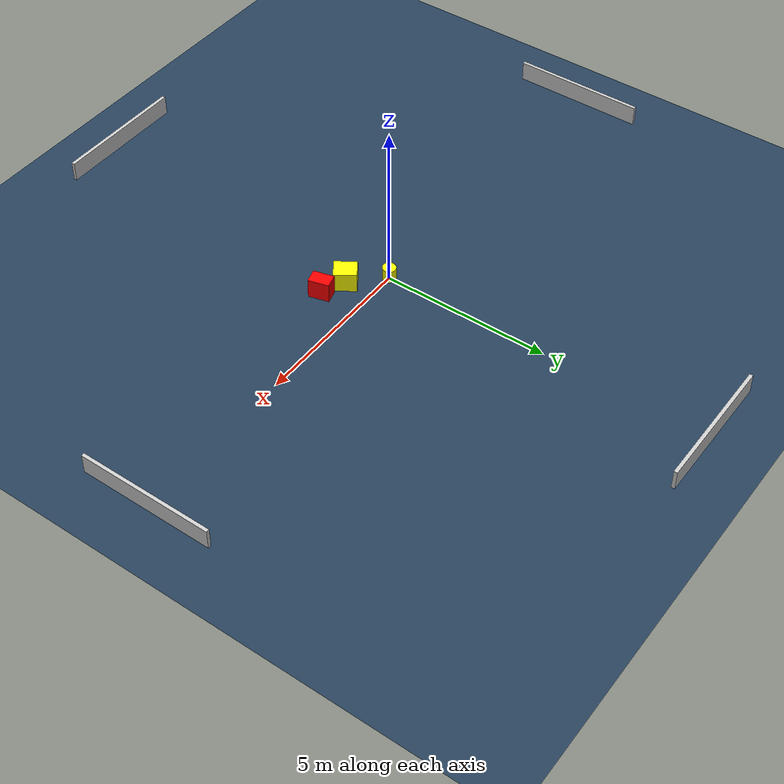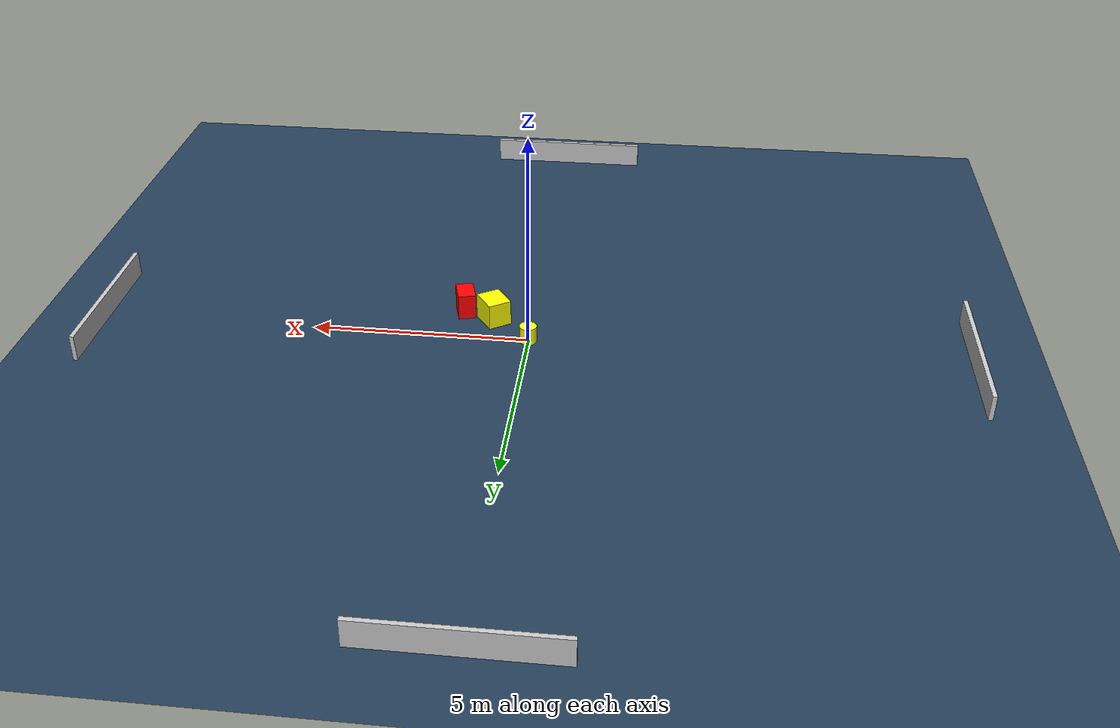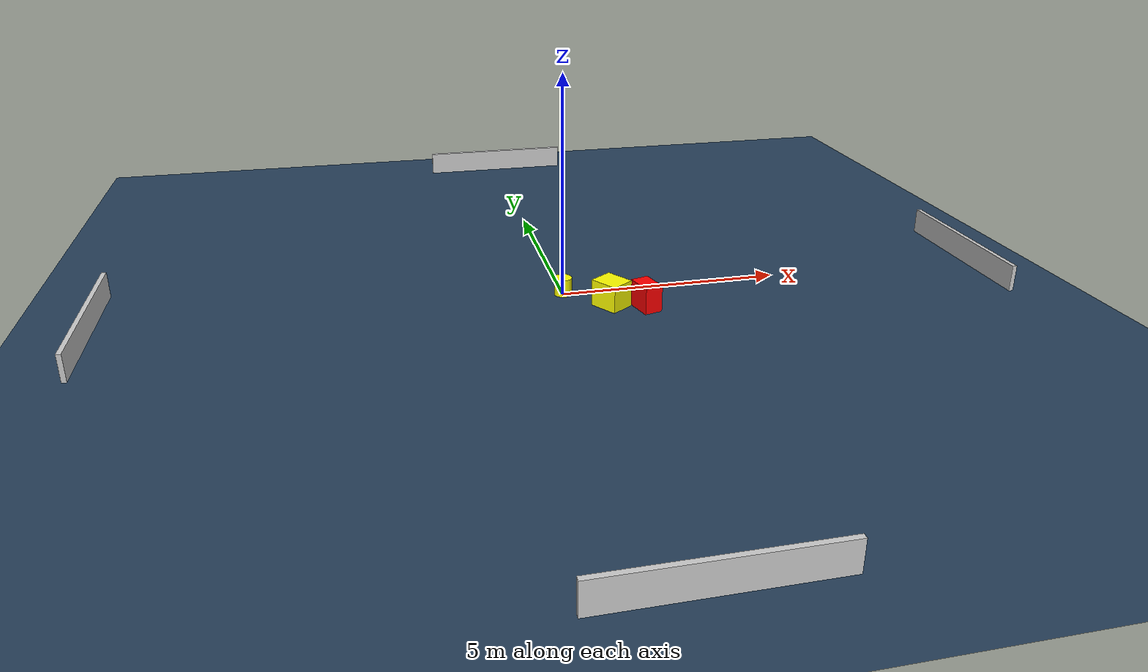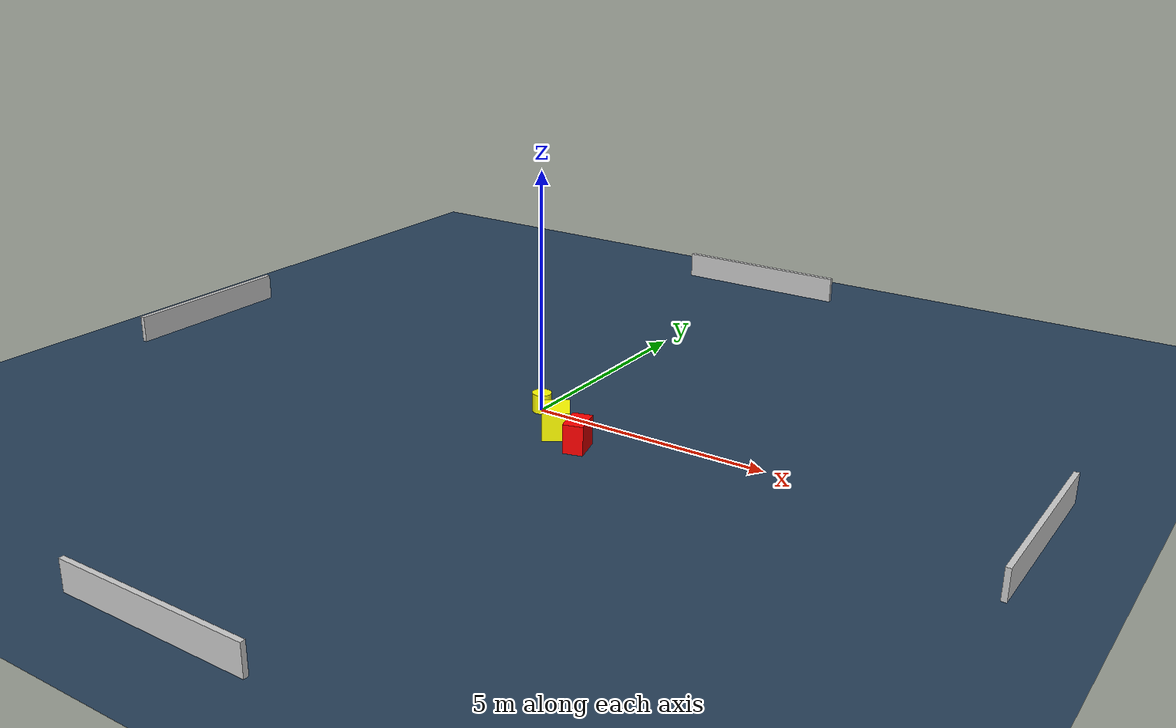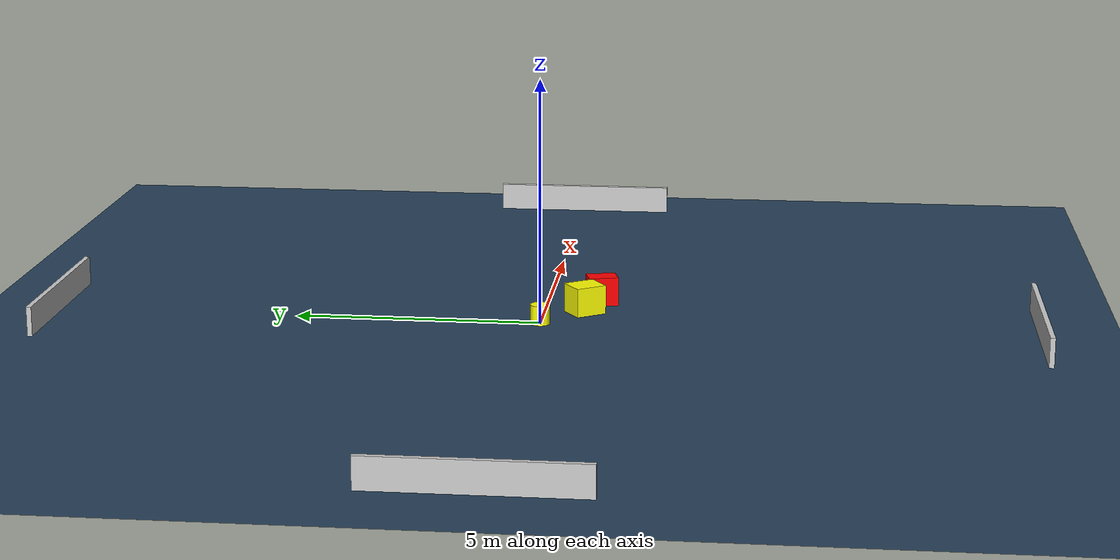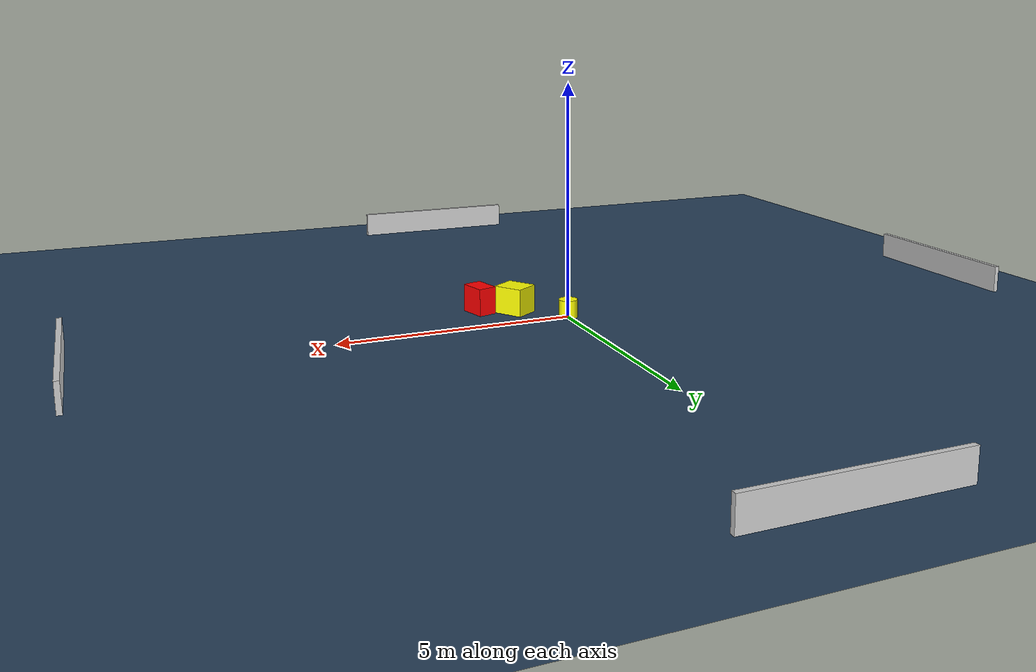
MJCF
<?xml version="1.0" ?>
<mujoco model="generated_environment">
  <option timestep="0.01" integrator="RK4" cone="elliptic"/>
  <default>
    <geom density="1"/>
  </default>
  <asset>
    <texture builtin="gradient" height="3072" name="skybox" rgb1="0.3 0.5 0.7" rgb2="0 0 0" type="skybox" width="512"/>
    <texture builtin="checker" height="300" name="groundplane" rgb1="0.2 0.3 0.4" rgb2="0.1 0.2 0.3" type="2d" width="300"/>
    <material name="groundplane" reflectance="0.2" texrepeat="5 5" texture="groundplane"/>
  </asset>
  <worldbody>
    <light dir="0 0 -1" directional="true" pos="0 0 1.5"/>
    <geom condim="3" friction="0.5 0.005 0.001" material="groundplane" name="floor" pos="0 0 0" size="0 0 0.05" type="plane"/>
    <body name="walls">
      <geom name="wall_1" condim="4" pos="-10.0 0.0 0.3" rgba="0.800000011920929 0.800000011920929 0.800000011920929 1.0" size="0.05 2.0 0.3" type="box"/>
      <geom name="wall_2" condim="4" pos="10.0 0.0 0.3" rgba="0.800000011920929 0.800000011920929 0.800000011920929 1.0" size="0.05 2.0 0.3" type="box"/>
      <geom name="wall_3" condim="4" pos="0.0 -10.0 0.3" rgba="0.800000011920929 0.800000011920929 0.800000011920929 1.0" size="2.0 0.05 0.3" type="box"/>
      <geom name="wall_4" condim="4" pos="0.0 10.0 0.3" rgba="0.800000011920929 0.800000011920929 0.800000011920929 1.0" size="2.0 0.05 0.3" type="box"/>
    </body>
    <body name="robot">
      <joint name="joint_x" type="slide" pos="0 0 0" axis="1 0 0"/>
      <joint name="joint_y" type="slide" pos="0 0 0" axis="0 1 0"/>
      <geom name="robot" type="cylinder" pos="0.0 0.0 0.2" size="0.2 0.2 0.0" mass="5.0" friction="1.0 0.005 0.0001" condim="4" rgba="1.0 1.0 0.0 1.0"/>
    </body>
    <body name="obstacle_1_movable">
      <geom name="obstacle_1_movable" condim="4" pos="0.9079651122389527 -0.8289441113793921 0.3" euler="0 0 124.17607282534446" friction="0.0 0.005 0.001" rgba="1.0 1.0 0.0 1.0" size="0.3314911189334334 0.27991285317575143 0.3" type="box" mass="0.1"/>
      <joint type="free"/>
    </body>
    <body name="obstacle_2_static">
      <geom name="obstacle_2_static" condim="4" pos="1.6161465559432957 -1.1212190387450167 0.3" euler="0 0 195.20661555144454" friction="0.0 0.005 0.001" rgba="1.0 0.0 0.0 1.0" size="0.20536861357331682 0.3079691572625398 0.3" type="box"/>
    </body>
  </worldbody>
  <actuator>
    <motor name="actuator_x" joint="joint_x" gear="1" ctrlrange="-1 1"/>
    <motor name="actuator_y" joint="joint_y" gear="1" ctrlrange="-1 1"/>
  </actuator>
</mujoco>
